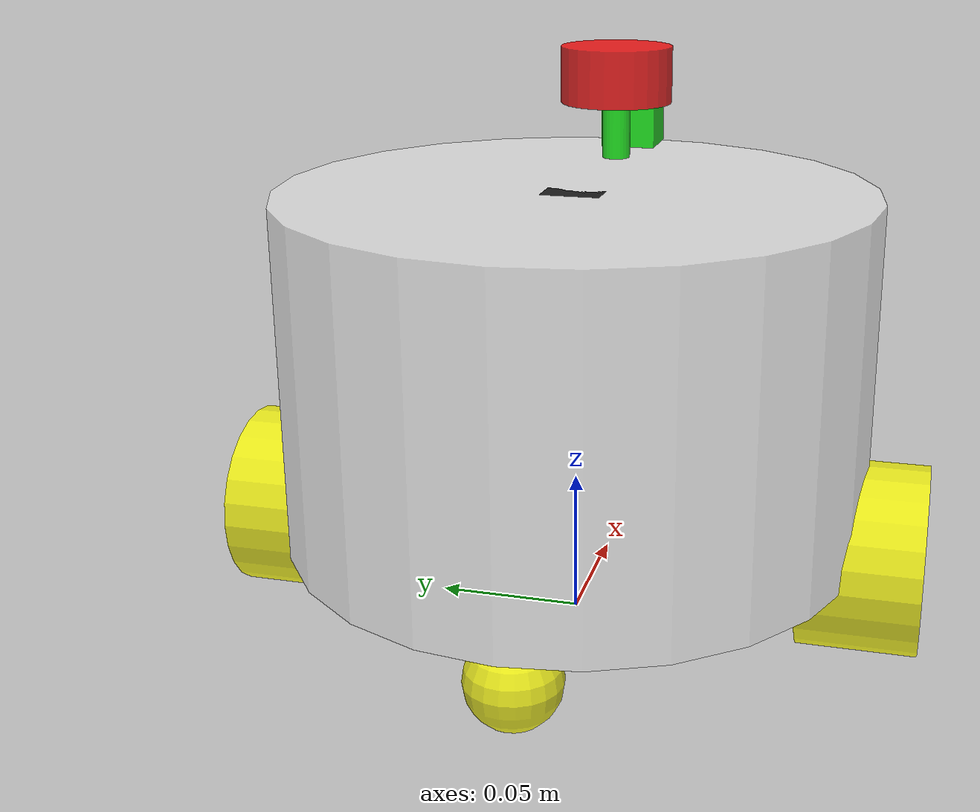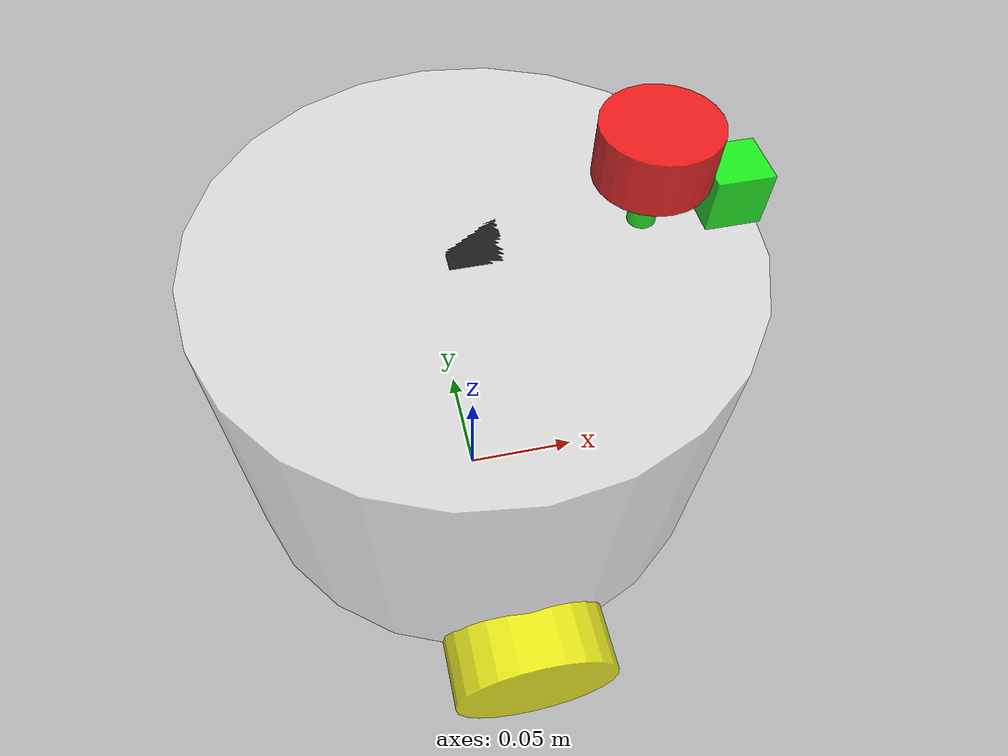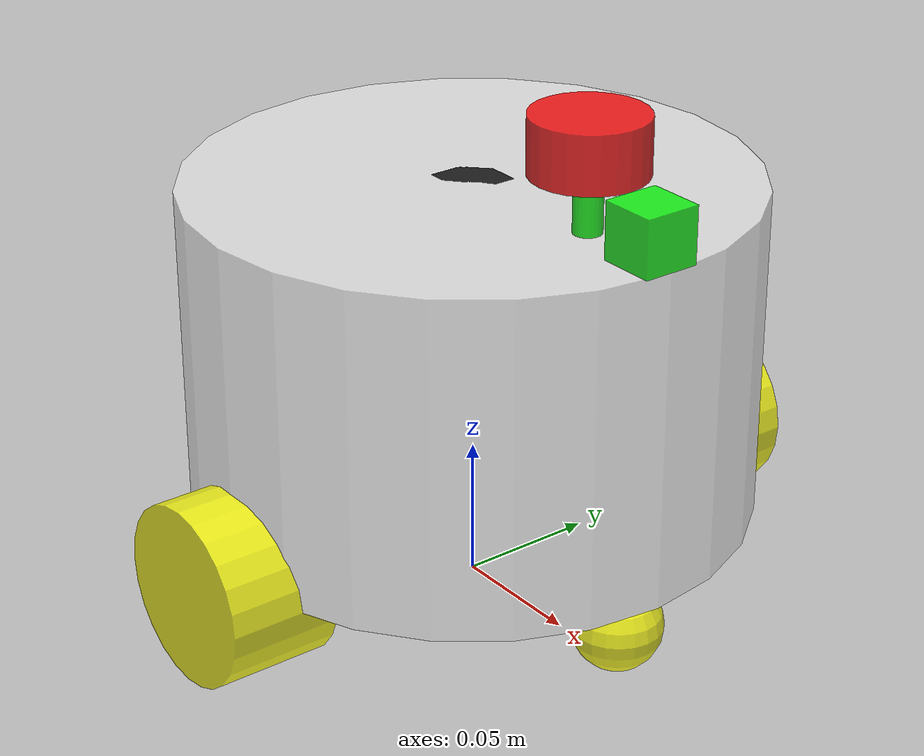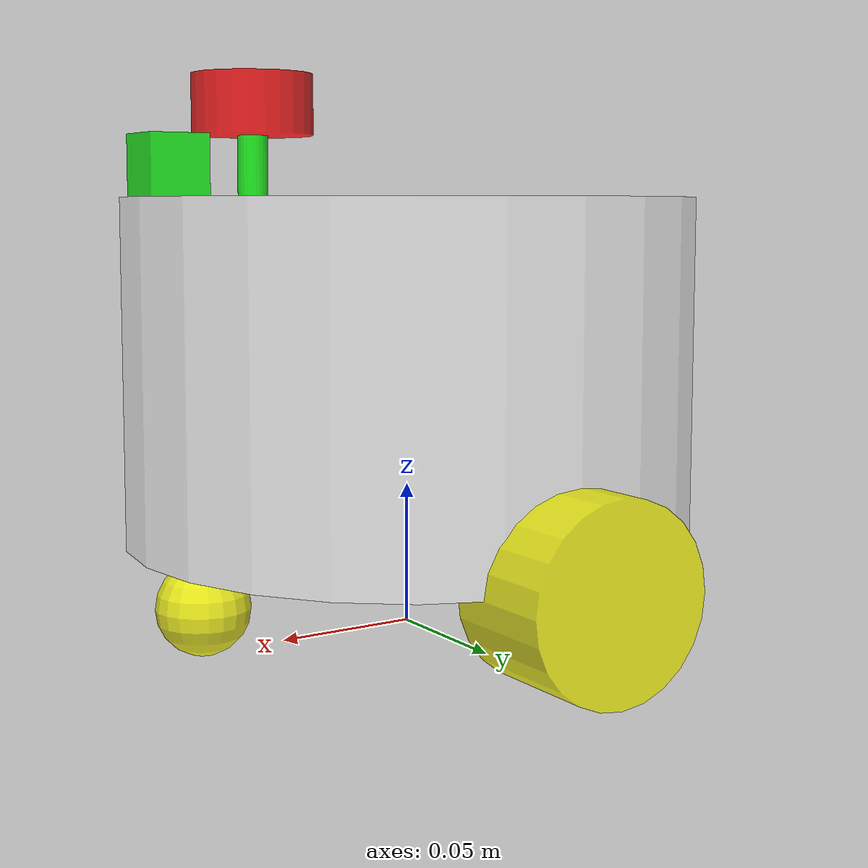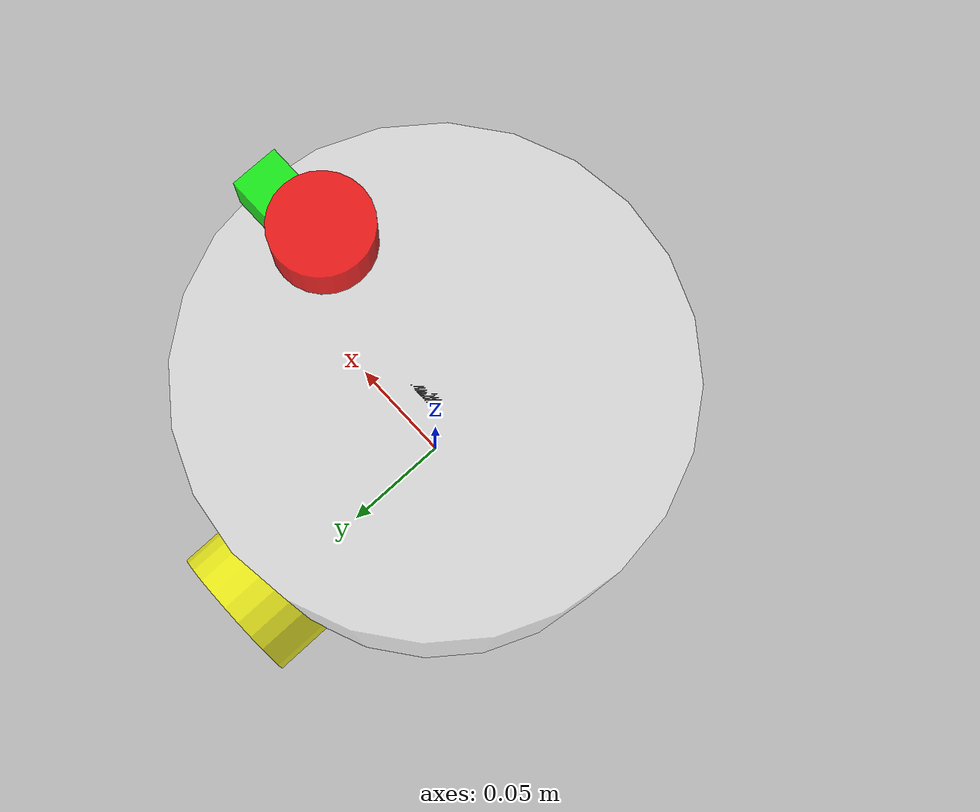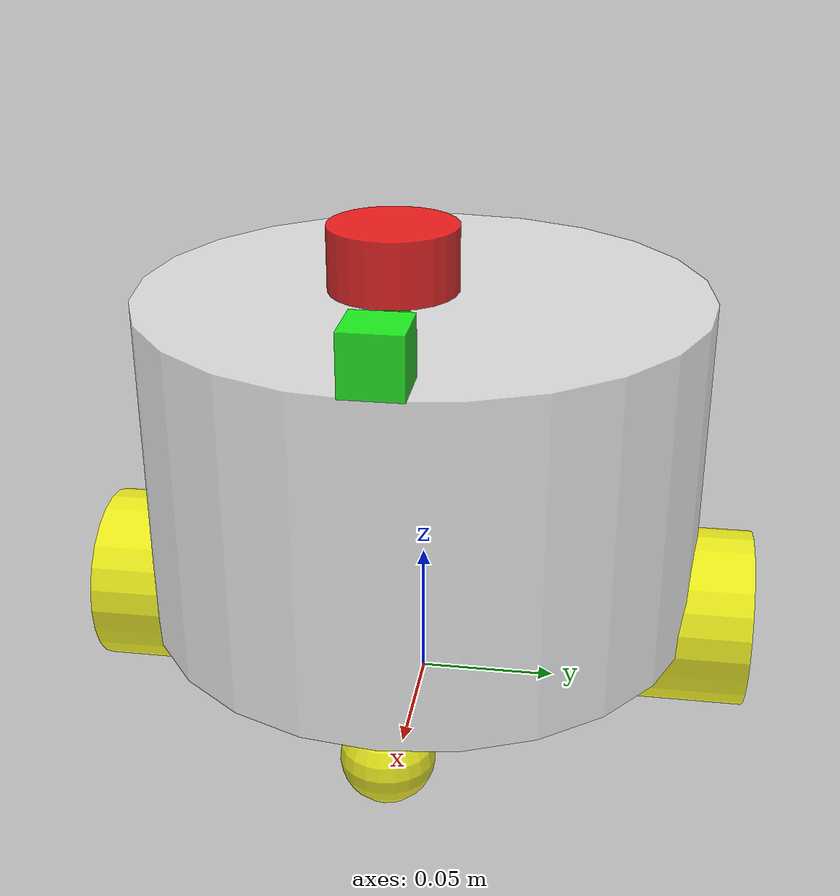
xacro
<?xml version="1.0"?>
<robot name="fishbot" xmlns:xacro="http://ros.org/wiki/xacro">

    <!-- 基础部分 -->
    <xacro:include filename="$(find fishbot_description)/urdf/fishbot/base.urdf.xacro" />
    <!-- 感知部分 -->
    <xacro:include filename="$(find fishbot_description)/urdf/fishbot/sensor/imu.urdf.xacro" />
    <xacro:include filename="$(find fishbot_description)/urdf/fishbot/sensor/camera.urdf.xacro" />
    <xacro:include filename="$(find fishbot_description)/urdf/fishbot/sensor/laser.urdf.xacro" />
    <!-- 执行部分 -->
    <xacro:include filename="$(find fishbot_description)/urdf/fishbot/action/wheel.urdf.xacro" />
    <xacro:include filename="$(find fishbot_description)/urdf/fishbot/action/caster.urdf.xacro" />
    <!-- 插件 -->
    <xacro:include filename="$(find fishbot_description)/urdf/fishbot/plugins/gazebo_control_plugin.xacro" />
    <xacro:include filename="$(find fishbot_description)/urdf/fishbot/plugins/gazebo_sensor_plugin.xacro" />
    <xacro:include filename="$(find fishbot_description)/urdf/fishbot/fishbot.ros2_control.xacro" />

    <xacro:base_xacro base_radius="0.1" base_length="0.12" />
    <xacro:imu_xacro xyz="0.0 0.0 0.05" />
    <xacro:camera_xacro xyz="0.09 0.0 0.07" />
    <xacro:laser_xacro xyz="0.06 0.0 0.07" />

    <xacro:wheel_xacro wheel_name="left_wheel" xyz="0 0.1 -0.06" />
    <xacro:wheel_xacro wheel_name="right_wheel" xyz="0 -0.1 -0.06" />

    <xacro:caster_xacro caster_name="front_caster" xyz="0.08 0.0 -0.076" />
    <xacro:caster_xacro caster_name="back_caster" xyz="-0.08 0.0 -0.076" />

    <xacro:gazebo_sensor_plugin />
    <xacro:fishbot_ros2_control />

</robot>

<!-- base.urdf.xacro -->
<!--
    文件：base.urdf.xacro
    功能：定义底盘 base_link 的 xacro 宏
    作者：hzy
    日期：2025-07-11
-->
<robot name="fishbot" xmlns:xacro="http://ros.org/wiki/xacro">
    <xacro:include filename="$(find fishbot_description)/urdf/fishbot/common_inertia.xacro" />
    <!-- 底盘参数定义 -->
    <xacro:property name="color_white" value="1.0 1.0 1.0 0.5"/>

    <!--
        宏：base_xacro
        参数：base_length, base_radius, color_white
        功能：生成底盘 base_link
    -->
    <xacro:macro name="base_xacro" params="base_length base_radius">
        <link name="robot_footprint" />

        <!-- 定义底盘 link -->
        <link name="base_link">
            <visual>
                <origin xyz="0.0 0.0 0.0" rpy="0.0 0.0 0.0"/>
                <geometry>
                    <cylinder radius="${base_radius}" length="${base_length}"/>
                </geometry>
                <material name="white">
                    <color rgba="${color_white}"/>
                </material>
            </visual>
            <collision>
                <origin xyz="0.0 0.0 0.0" rpy="0.0 0.0 0.0"/>
                <geometry>
                    <cylinder radius="${base_radius}" length="${base_length}"/>
                </geometry>
                <material name="white">
                    <color rgba="${color_white}"/>
                </material>
            </collision>
            <xacro:cylinder_inertia m="1.0" r="${base_radius}" h="${base_length}"/>
        </link>

        <joint name="footprint_joint" type="fixed">
            <origin xyz="0.0 0.0 ${base_length/2.0+0.032}" rpy="0.0 0.0 0.0"/>
            <parent link="robot_footprint"/>
            <child link="base_link"/>
        </joint>

        <gazebo reference="base_link">
            <material>Gazebo/White</material>
        </gazebo>
    </xacro:macro>
</robot>

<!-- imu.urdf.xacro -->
<!--
    文件：imu.urdf.xacro
    功能：定义 IMU 传感器的 xacro 宏
    作者：hzy
    日期：2025-07-11
-->
<robot name="fishbot" xmlns:xacro="http://ros.org/wiki/xacro">
   <xacro:include filename="$(find fishbot_description)/urdf/fishbot/common_inertia.xacro" />
    <!-- IMU 传感器尺寸参数 -->
    <xacro:property name="imu_size" value="0.02"/>
    <!-- IMU 传感器颜色参数 -->
    <xacro:property name="color_black" value="0.0 0.0 0.0 0.5"/>

    <!--
        宏：imu_xacro
        参数：imu_size, color_black, xyz
        功能：生成 IMU link 及其与 base_link 的固定 joint
    -->
    <xacro:macro name="imu_xacro" params="xyz">
        <!-- 定义 IMU link -->
        <link name="imu_link">
            <visual>
                <origin xyz="0.0 0.0 0.0" rpy="0.0 0.0 0.0"/>
                <geometry>
                    <box size="${imu_size} ${imu_size} ${imu_size}"/>
                </geometry>
                <material name="black">
                    <color rgba="${color_black}"/>
                </material>
            </visual>
            <collision>
                <origin xyz="0.0 0.0 0.0" rpy="0.0 0.0 0.0"/>
                <geometry>
                    <box size="${imu_size} ${imu_size} ${imu_size}"/>
                </geometry>
                <material name="black">
                    <color rgba="${color_black}"/>
                </material>
            </collision>
            <xacro:box_inertia m="0.01" w="0.02" d="0.02" h="0.02"/>
        </link>

        <!-- 定义 IMU 与 base_link 的固定 joint -->
        <joint name="imu_joint" type="fixed">
            <parent link="base_link"/>
            <child link="imu_link"/>
            <origin xyz="${xyz}" rpy="0.0 0.0 0.0"/>
        </joint>
    </xacro:macro>
</robot>

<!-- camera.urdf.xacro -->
<!--
    文件：camera.urdf.xacro
    功能：定义摄像头传感器的 xacro 宏
    作者：hzy
    日期：2025-07-11
-->
<robot name="fishbot" xmlns:xacro="http://ros.org/wiki/xacro">
   <xacro:include filename="$(find fishbot_description)/urdf/fishbot/common_inertia.xacro" />
    <!-- 摄像头相关参数定义 -->
    <xacro:property name="base_radius" value="0.10"/>
    <xacro:property name="base_length" value="0.12"/>
    <xacro:property name="imu_size" value="0.02"/>

    <!-- 颜色参数定义 -->
    <xacro:property name="color_green" value="0.0 1.0 0.0 0.5"/>

    <!--
        宏：camera_xacro
        参数：xyz
        功能：生成 camera_link 及其与 base_link 的固定 joint
    -->
    <xacro:macro name="camera_xacro" params="xyz">
        <!-- 定义摄像头 link -->
        <link name="camera_link">
            <visual>
                <origin xyz="0.0 0.0 0.0" rpy="0.0 0.0 0.0"/>
                <geometry>
                    <box size="${imu_size} ${imu_size} ${imu_size}"/>
                </geometry>
                <material name="green">
                    <color rgba="${color_green}"/>
                </material>
            </visual>
            <collision>
                <origin xyz="0.0 0.0 0.0" rpy="0.0 0.0 0.0"/>
                <geometry>
                    <box size="${imu_size} ${imu_size} ${imu_size}"/>
                </geometry>
                <material name="green">
                    <color rgba="${color_green}"/>
                </material>
            </collision>
            <xacro:box_inertia m="0.01" w="0.02" h="0.10" d="0.02" />
        </link>

        <link name="camera_optional_link"></link>

        <!-- 定义摄像头与 base_link 的固定 joint -->
        <joint name="camera_joint" type="fixed">
            <parent link="base_link"/>
            <child link="camera_link"/>
            <origin xyz="${xyz}" rpy="0.0 0.0 0.0"/>
        </joint>

        <joint name="camera_optional_joint" type="fixed">
            <parent link="camera_link" />
            <child link="camera_optional_link" />
            <origin xyz="0 0 0" rpy="${-pi/2} 0 ${-pi/2}" />
        </joint>

        <gazebo reference="camera_link">
            <material>Gazebo/Blue</material>
        </gazebo>
    </xacro:macro>
</robot>

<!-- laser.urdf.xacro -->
<robot name="fishbot" xmlns:xacro="http://ros.org/wiki/xacro">
    <xacro:include filename="$(find fishbot_description)/urdf/fishbot/common_inertia.xacro" />
    <!-- 支撑杆尺寸参数（绿色），用于定义支撑杆的半径和长度 -->
    <xacro:property name="laser_cy_radius" value="0.005"/>
    <xacro:property name="laser_cy_length" value="0.05" />
    <!-- 雷达主体参数（红色），用于定义雷达的半径和长度 -->
    <xacro:property name="laser_radius" value="0.02" />
    <xacro:property name="laser_length" value="0.02" />
    <!-- 颜色参数，分别用于支撑杆（绿色）、雷达主体（红色）、备用黑色 -->
    <xacro:property name="color_green" value="0.0 1.0 0.0 0.8"/>
    <xacro:property name="color_black" value="0.0 0.0 0.0 0.8"/>
    <!-- 红色参数，应用于雷达主体 -->
    <xacro:property name="color_red" value="1.0 0.0 0.0 0.8"/>

    <!--
        宏：laser_xacro
        参数：xyz（支撑杆在 base_link 下的位置）
        功能：
            1. 生成激光传感器支撑杆（绿色）和雷达主体（红色）
            2. 支撑杆与 base_link 通过 joint 连接
            3. 雷达主体与支撑杆通过 joint 连接
    -->
    <xacro:macro name="laser_xacro" params="xyz">
        <!-- 支撑杆 link（绿色），包含可视化和碰撞体 -->
        <link name="laser_cylinder_link">
            <visual>
                <!-- 支撑杆可视化部分，绿色 -->
                <origin xyz="0.0 0.0 0.0" rpy="0.0 0.0 0.0"/>
                <geometry>
                    <cylinder radius="${laser_cy_radius}" length="${laser_cy_length}"/>
                </geometry>
                <material name="green">
                    <color rgba="${color_green}"/>
                </material>
            </visual>
            <collision>
                <!-- 支撑杆碰撞体部分，绿色 -->
                <origin xyz="0.0 0.0 0.0" rpy="0.0 0.0 0.0"/>
                <geometry>
                    <cylinder radius="${laser_cy_radius}" length="${laser_cy_length}"/>
                </geometry>
                <material name="green">
                    <color rgba="${color_green}"/>
                </material>
            </collision>
            <xacro:cylinder_inertia m="0.01" r="0.01" h="0.10" />
        </link>
        <!-- 雷达主体 link（红色），包含可视化和碰撞体 -->
        <link name="laser_link">
            <visual>
                <!-- 雷达主体可视化部分，红色 -->
                <origin xyz="0.0 0.0 0.0" rpy="0.0 0.0 0.0"/>
                <geometry>
                    <cylinder radius="${laser_radius}" length="${laser_length}"/>
                </geometry>
                <material name="red">
                    <color rgba="${color_red}"/>
                </material>
            </visual>
            <collision>
                <!-- 雷达主体碰撞体部分，红色 -->
                <origin xyz="0.0 0.0 0.0" rpy="0.0 0.0 0.0"/>
                <geometry>
                    <cylinder radius="${laser_radius}" length="${laser_length}"/>
                </geometry>
                <material name="red">
                    <color rgba="${color_red}"/>
                </material>
            </collision>
            <xacro:cylinder_inertia m="0.03" r="0.02" h="0.02" />
        </link>

        <!-- 支撑杆与 base_link 连接  -->
        <joint name="laser_cylinker_link" type="fixed">
            <parent link="base_link"/>
            <child link="laser_cylinder_link"/>
            <origin xyz="${xyz}" rpy="0.0 0.0 0.0"/>
        </joint>

        <!-- 雷达主体与支撑杆的固定 joint -->
        <joint name="laser_joint" type="fixed">
            <!-- 雷达主体与支撑杆连接 -->
            <parent link="base_link"/>
            <child link="laser_link"/>
            <origin xyz="0.06 0.0 0.09" rpy="0.0 0.0 0.0"/>
        </joint>

        <gazebo reference="laser_cylinder_link">
            <material>Gazebo/Green</material>
        </gazebo>
        <gazebo reference="laser_link">
            <material>Gazebo/Red</material>
        </gazebo>

    </xacro:macro>
</robot>

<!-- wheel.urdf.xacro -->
<!--
    文件：wheel.urdf.xacro
    功能：定义 wheel 的 xacro 宏
    作者：hzy
    日期：2025-07-11
-->
<robot name="fishbot" xmlns:xacro="http://ros.org/wiki/xacro">
   <xacro:include filename="$(find fishbot_description)/urdf/fishbot/common_inertia.xacro" />
    <!--
        宏：wheel_xacro
        参数：${wheel_name}, xyz
        功能：生成 wheel link 及其与 base_link 的固定 joint
    -->
    <xacro:macro name="wheel_xacro" params="wheel_name xyz">
        <!-- 定义 {wheel_name} link -->
        <link name="${wheel_name}_link">
            <visual>
                <origin xyz="0.0 0.0 0.0" rpy="1.57097 0.0 0.0"/>
                <geometry>
                    <cylinder radius="0.032" length="0.04"/>
                </geometry>
                <material name="yellow">
                    <color rgba="1.0 1.0 0.0 0.8"/>
                </material>
            </visual>
            <collision>
                <origin xyz="0.0 0.0 0.0" rpy="1.57097 0.0 0.0"/>
                <geometry>
                    <cylinder radius="0.032" length="0.04"/>
                </geometry>
                <material name="yellow">
                    <color rgba="1.0 1.0 0.0 0.8"/>
                </material>
            </collision>
            <xacro:cylinder_inertia m="0.1" h="0.04" r="0.032"/>
        </link>

        <!-- 定义 wheel 与 base_link 的固定 joint -->
        <joint name="${wheel_name}_joint" type="continuous">
            <parent link="base_link"/>
            <child link="${wheel_name}_link"/>
            <origin xyz="${xyz}" rpy="0.0 0.0 0.0"/>
            <axis xyz="0.0 1.0 0.0"/>
        </joint>

        <gazebo reference="${wheel_name}_link">
            <material>Gazebo/Black</material>
            <mu1 value="20.0" />
            <mu2 value="20.0" />
            <kp value="1000000000.0" />
            <kd value="1.0" />
        </gazebo>
    </xacro:macro>
</robot>

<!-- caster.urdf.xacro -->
<!--
    文件：caster.urdf.xacro
    功能：定义 caster wheel 的 xacro 宏
    作者：hzy
    日期：2025-07-11
-->
<robot name="fishbot" xmlns:xacro="http://ros.org/wiki/xacro">
   <xacro:include filename="$(find fishbot_description)/urdf/fishbot/common_inertia.xacro" />
    <!--
        宏：caster_xacro
        参数：${caster_name}, xyz
        功能：生成 caster link 及其与 base_link 的固定 joint
    -->
    <xacro:macro name="caster_xacro" params="caster_name xyz">
        <!-- 定义 {caster_name} link -->
        <link name="${caster_name}_link">
            <visual>
                <origin xyz="0.0 0.0 0.0" rpy="0.0 0.0 0.0"/>
                <geometry>
                    <sphere radius="0.016"/>
                </geometry>
                <material name="yellow">
                    <color rgba="1.0 1.0 0.0 0.8"/>
                </material>
            </visual>
            <collision>
                <origin xyz="0.0 0.0 0.0" rpy="0.0 0.0 0.0"/>
                <geometry>
                    <sphere radius="0.016"/>
                </geometry>
                <material name="yellow">
                    <color rgba="1.0 1.0 0.0 0.8"/>
                </material>
            </collision>
            <xacro:sphere_inertia m="0.01" r="0.016" />
        </link>

        <!-- 定义 caster 与 base_link 的固定 joint -->
        <joint name="${caster_name}_joint" type="fixed">
            <parent link="base_link"/>
            <child link="${caster_name}_link"/>
            <origin xyz="${xyz}" rpy="0.0 0.0 0.0"/>
        </joint>
        <!-- 定义 caster 的 caster_joint -->
        <gazebo reference="${caster_name}_link">
            <material>Gazebo/Black</material>
            <mu1 value="0.0" />
            <mu2 value="0.0" />
            <kp value="1000000000.0" />
            <kd value="1.0" />
        </gazebo>

    </xacro:macro>
</robot>
